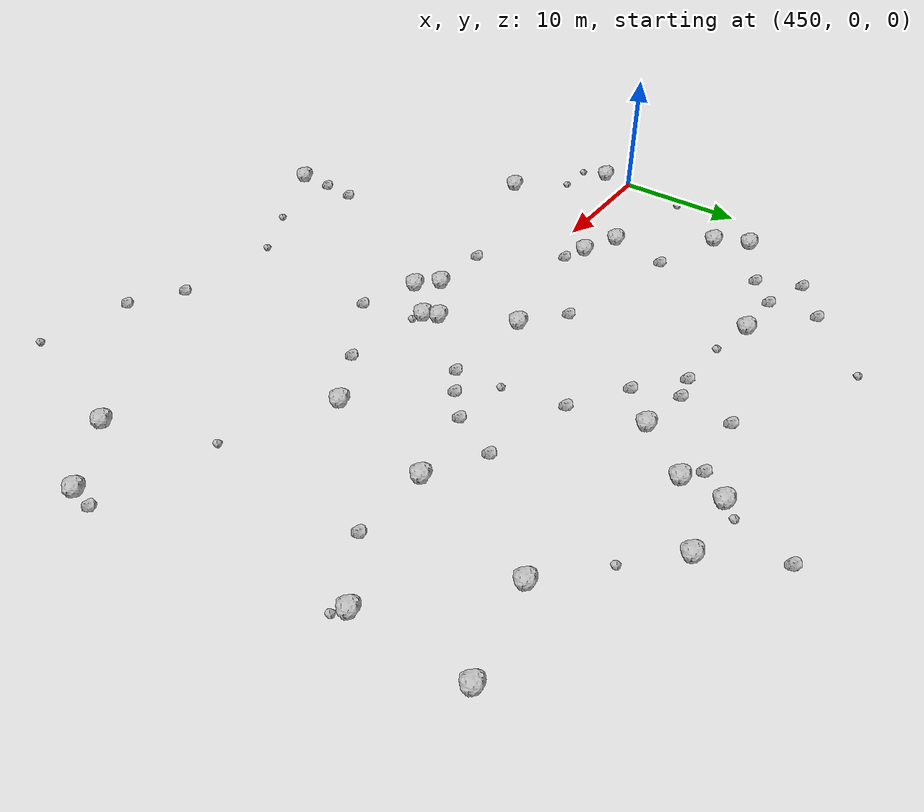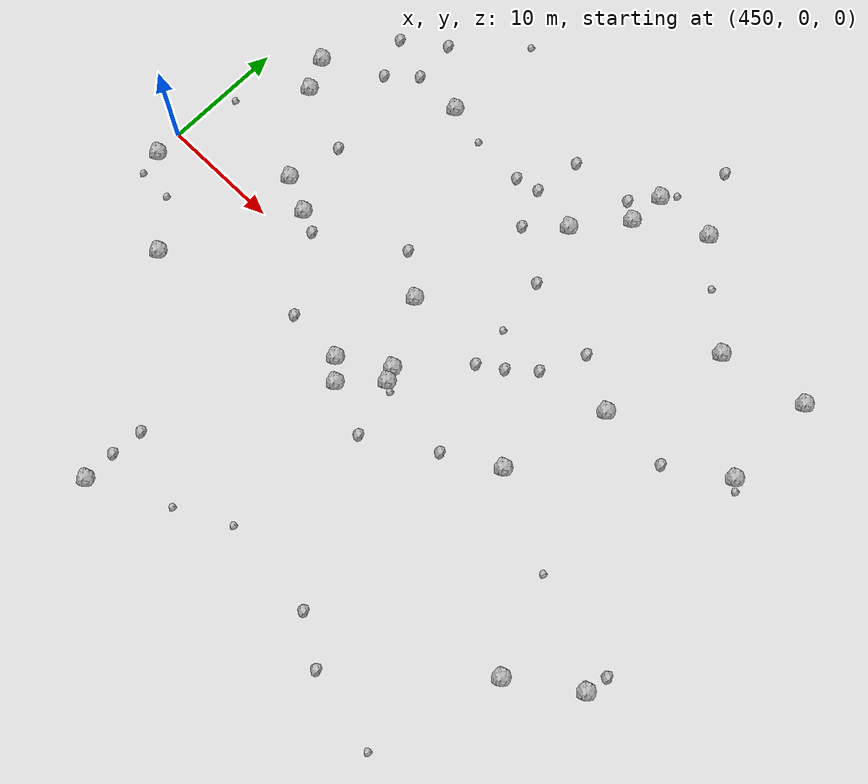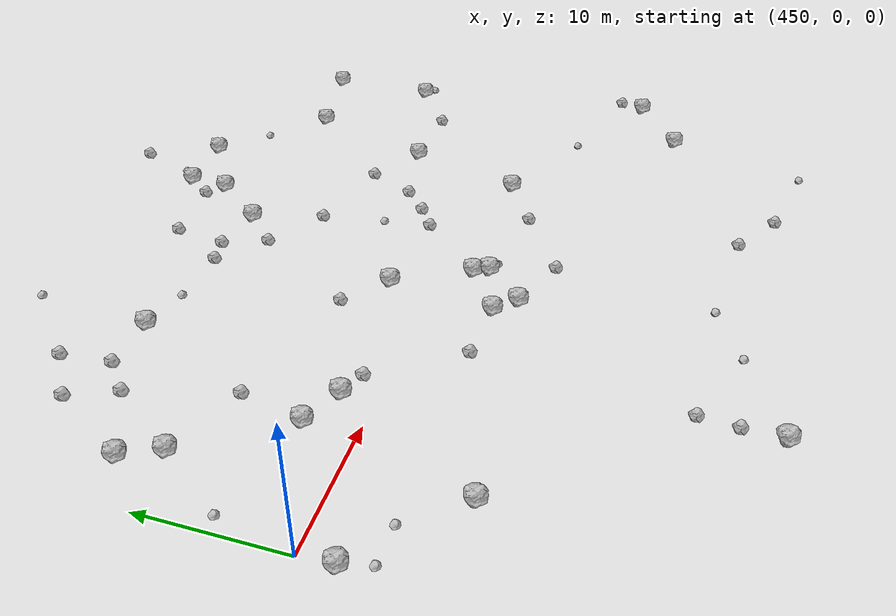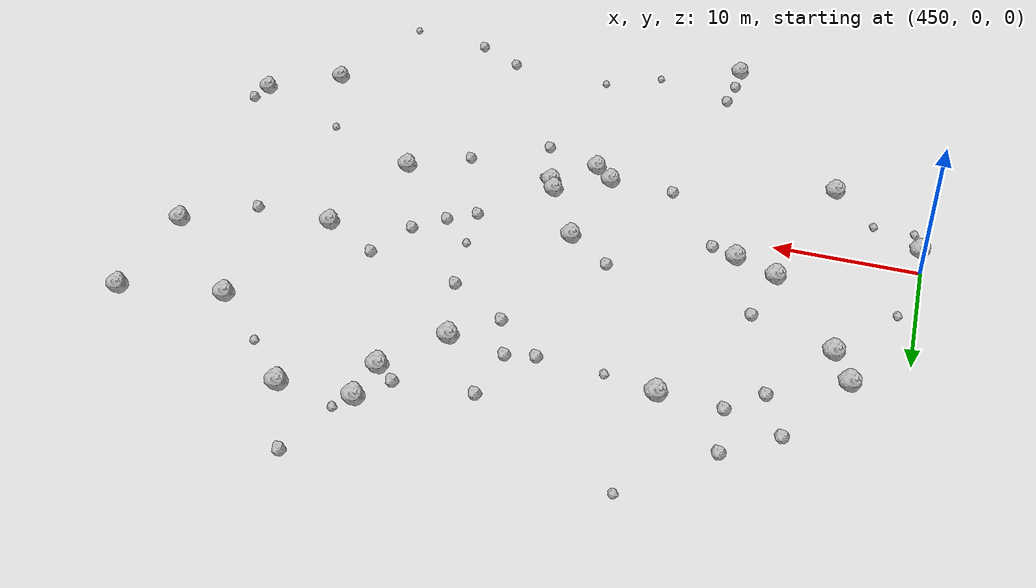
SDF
<sdf version="1.6">
 <world name="default">
  <include><uri>model://sun</uri></include>
  <model name="rock1_12_3">
   <include><uri>model://rock1</uri><pose>488.45729659889093 -1.8667813436483556 0.5 0 0 0</pose></include>
  </model>
  <model name="rock1_12_4">
   <include><uri>model://rock1</uri><pose>504.3849561490532 -9.800966909140293 0.5 0 0 0</pose></include>
  </model>
  <model name="rock1_12_5">
   <include><uri>model://rock1</uri><pose>453.5010959538424 12.921297222464858 0.5 0 0 0</pose></include>
  </model>
  <model name="rock1_12_6">
   <include><uri>model://rock1</uri><pose>477.26445868544045 -3.1225453834002117 0.5 0 0 0</pose></include>
  </model>
  <model name="rock1_12_7">
   <include><uri>model://rock1</uri><pose>474.4630908368405 -5.980482743214623 0.5 0 0 0</pose></include>
  </model>
  <model name="rock1_12_8">
   <include><uri>model://rock1</uri><pose>476.7626695779132 -2.0443822458066627 0.5 0 0 0</pose></include>
  </model>
  <model name="rock1_12_9">
   <include><uri>model://rock1</uri><pose>499.2802367743836 -13.35445605466418 0.5 0 0 0</pose></include>
  </model>
  <model name="rock1_12_10">
   <include><uri>model://rock1</uri><pose>486.8226185160045 23.357225434829296 0.5 0 0 0</pose></include>
  </model>
  <model name="rock1_12_11">
   <include><uri>model://rock1</uri><pose>478.3775302389522 16.129857152474017 0.5 0 0 0</pose></include>
  </model>
  <model name="rock1_12_12">
   <include><uri>model://rock1</uri><pose>481.5745371345666 20.084070604648836 0.5 0 0 0</pose></include>
  </model>
  <model name="rock1_12_13">
   <include><uri>model://rock1</uri><pose>481.82740769927113 23.145524741034812 0.5 0 0 0</pose></include>
  </model>
  <model name="rock1_12_14">
   <include><uri>model://rock1</uri><pose>454.74252031084427 10.317395520948516 0.5 0 0 0</pose></include>
  </model>
  <model name="rock1_12_15">
   <include><uri>model://rock1</uri><pose>501.4705356139721 9.760274414600204 0.5 0 0 0</pose></include>
  </model>
  <model name="rock1_12_16">
   <include><uri>model://rock1</uri><pose>501.396927685843 17.94755710859856 0.5 0 0 0</pose></include>
  </model>
  <model name="rock1_12_17">
   <include><uri>model://rock1</uri><pose>473.0078938500741 -4.520807148444391 0.5 0 0 0</pose></include>
  </model>
  <model name="rock1_12_18">
   <include><uri>model://rock1</uri><pose>462.3171068367932 2.3251559213293262 0.5 0 0 0</pose></include>
  </model>
  <model name="rock1_12_19">
   <include><uri>model://rock1</uri><pose>456.62407509230104 -8.107678906527223 0.5 0 0 0</pose></include>
  </model>
  <model name="rock1_12_20">
   <include><uri>model://rock1</uri><pose>490.9442493866037 6.874933698331702 0.5 0 0 0</pose></include>
  </model>
  <model name="rock1_12_21">
   <include><uri>model://rock1</uri><pose>450.2048094717053 -2.319422344656065 0.5 0 0 0</pose></include>
  </model>
  <model name="rock1_12_22">
   <include><uri>model://rock1</uri><pose>466.5463456510599 -24.52082403141798 0.5 0 0 0</pose></include>
  </model>
  <model name="rock1_12_23">
   <include><uri>model://rock1</uri><pose>464.5555238849024 17.33257025346731 0.5 0 0 0</pose></include>
  </model>
  <model name="rock1_12_24">
   <include><uri>model://rock1</uri><pose>459.3581344842353 3.6373229489463412 0.5 0 0 0</pose></include>
  </model>
  <model name="rock1_12_25">
   <include><uri>model://rock1</uri><pose>494.135962913011 16.583591285005006 0.5 0 0 0</pose></include>
  </model>
  <model name="rock1_12_26">
   <include><uri>model://rock1</uri><pose>473.9128422533968 3.2585655633563846 0.5 0 0 0</pose></include>
  </model>
  <model name="rock2_12_0">
   <include><uri>model://rock2</uri><pose>456.7802220811915 18.752448280853017 0.3 0 0 0</pose></include>
  </model>
  <model name="rock2_12_1">
   <include><uri>model://rock2</uri><pose>466.7120639936786 -19.10850131655253 0.3 0 0 0</pose></include>
  </model>
  <model name="rock2_12_2">
   <include><uri>model://rock2</uri><pose>458.20486364170546 15.474087519763458 0.3 0 0 0</pose></include>
  </model>
  <model name="rock2_12_3">
   <include><uri>model://rock2</uri><pose>470.6559962191148 5.778845337518767 0.3 0 0 0</pose></include>
  </model>
  <model name="rock2_12_4">
   <include><uri>model://rock2</uri><pose>472.41165023937015 16.369345350084956 0.3 0 0 0</pose></include>
  </model>
  <model name="rock2_12_5">
   <include><uri>model://rock2</uri><pose>479.81542674600695 10.907285947123057 0.3 0 0 0</pose></include>
  </model>
  <model name="rock2_12_6">
   <include><uri>model://rock2</uri><pose>474.368911398335 16.786499843847608 0.3 0 0 0</pose></include>
  </model>
  <model name="rock2_12_7">
   <include><uri>model://rock2</uri><pose>504.7113278105274 -7.945786303039199 0.3 0 0 0</pose></include>
  </model>
  <model name="rock2_12_8">
   <include><uri>model://rock2</uri><pose>468.1552220637144 -4.321327837234577 0.3 0 0 0</pose></include>
  </model>
  <model name="rock2_12_9">
   <include><uri>model://rock2</uri><pose>489.24439156767926 -22.34634796760482 0.3 0 0 0</pose></include>
  </model>
  <model name="rock2_12_10">
   <include><uri>model://rock2</uri><pose>480.1344566252444 21.143301994313468 0.3 0 0 0</pose></include>
  </model>
  <model name="rock2_12_11">
   <include><uri>model://rock2</uri><pose>475.63049444157605 13.606477442437914 0.3 0 0 0</pose></include>
  </model>
  <model name="rock2_12_12">
   <include><uri>model://rock2</uri><pose>496.7318700413969 6.688784281753286 0.3 0 0 0</pose></include>
  </model>
  <model name="rock2_12_13">
   <include><uri>model://rock2</uri><pose>460.2608553246273 8.21407678648967 0.3 0 0 0</pose></include>
  </model>
  <model name="rock2_12_14">
   <include><uri>model://rock2</uri><pose>484.07629398204176 28.432742227684393 0.3 0 0 0</pose></include>
  </model>
  <model name="rock2_12_15">
   <include><uri>model://rock2</uri><pose>464.0710039336461 1.549527681229609 0.3 0 0 0</pose></include>
  </model>
  <model name="rock2_12_16">
   <include><uri>model://rock2</uri><pose>483.0042716209098 3.9536680906594697 0.3 0 0 0</pose></include>
  </model>
  <model name="rock2_12_17">
   <include><uri>model://rock2</uri><pose>485.0101501608799 5.728911941344144 0.3 0 0 0</pose></include>
  </model>
  <model name="rock2_12_18">
   <include><uri>model://rock2</uri><pose>460.38589552147727 17.46530157056886 0.3 0 0 0</pose></include>
  </model>
  <model name="rock2_12_19">
   <include><uri>model://rock2</uri><pose>485.47789372310353 -19.991031111720197 0.3 0 0 0</pose></include>
  </model>
  <model name="rock2_12_20">
   <include><uri>model://rock2</uri><pose>466.4705047860497 -21.766427168818986 0.3 0 0 0</pose></include>
  </model>
  <model name="rock2_12_21">
   <include><uri>model://rock2</uri><pose>478.70079109516706 -7.671674607780986 0.3 0 0 0</pose></include>
  </model>
  <model name="rock2_12_22">
   <include><uri>model://rock2</uri><pose>486.69261214663095 9.26672424329167 0.3 0 0 0</pose></include>
  </model>
  <model name="rock2_12_23">
   <include><uri>model://rock2</uri><pose>474.93429694592703 20.690612455868532 0.3 0 0 0</pose></include>
  </model>
  <model name="rock2_12_24">
   <include><uri>model://rock2</uri><pose>460.03685593343283 21.124446379828065 0.3 0 0 0</pose></include>
  </model>
  <model name="rock2_12_25">
   <include><uri>model://rock2</uri><pose>481.0951822195165 2.6892418191848435 0.3 0 0 0</pose></include>
  </model>
  <model name="rock2_12_26">
   <include><uri>model://rock2</uri><pose>484.11149712226336 -4.325301524209944 0.3 0 0 0</pose></include>
  </model>
  <model name="rock3_12_0">
   <include><uri>model://rock3</uri><pose>496.10787144583696 -23.882800311587236 0.2 0 0 0</pose></include>
  </model>
  <model name="rock3_12_1">
   <include><uri>model://rock3</uri><pose>453.47765446954486 -4.451288128411399 0.2 0 0 0</pose></include>
  </model>
  <model name="rock3_12_2">
   <include><uri>model://rock3</uri><pose>477.09110418083117 -19.219104657613173 0.2 0 0 0</pose></include>
  </model>
  <model name="rock3_12_3">
   <include><uri>model://rock3</uri><pose>477.9477034263374 -3.577230013601831 0.2 0 0 0</pose></include>
  </model>
  <model name="rock3_12_4">
   <include><uri>model://rock3</uri><pose>502.13625902974513 9.036003463528395 0.2 0 0 0</pose></include>
  </model>
  <model name="rock3_12_5">
   <include><uri>model://rock3</uri><pose>467.9444894363616 16.52278117497233 0.2 0 0 0</pose></include>
  </model>
  <model name="rock3_12_6">
   <include><uri>model://rock3</uri><pose>451.1199669591304 5.3116690937565565 0.2 0 0 0</pose></include>
  </model>
  <model name="rock3_12_7">
   <include><uri>model://rock3</uri><pose>489.96602744028576 20.121507594513247 0.2 0 0 0</pose></include>
  </model>
  <model name="rock3_12_8">
   <include><uri>model://rock3</uri><pose>472.78115286660125 -21.46515227293614 0.2 0 0 0</pose></include>
  </model>
  <model name="rock3_12_9">
   <include><uri>model://rock3</uri><pose>496.1581999469439 -5.676193578516116 0.2 0 0 0</pose></include>
  </model>
  <model name="rock3_12_10">
   <include><uri>model://rock3</uri><pose>450.6143648959456 -4.367550601290148 0.2 0 0 0</pose></include>
  </model>
  <model name="rock3_12_11">
   <include><uri>model://rock3</uri><pose>465.00509326134676 25.826403382639917 0.2 0 0 0</pose></include>
  </model>
  <model name="rock3_12_12">
   <include><uri>model://rock3</uri><pose>480.66736891048083 6.170082069205321 0.2 0 0 0</pose></include>
  </model>
  <model name="rock3_12_13">
   <include><uri>model://rock3</uri><pose>482.67845181086045 24.20158473585616 0.2 0 0 0</pose></include>
  </model>
 </world>
</sdf>
